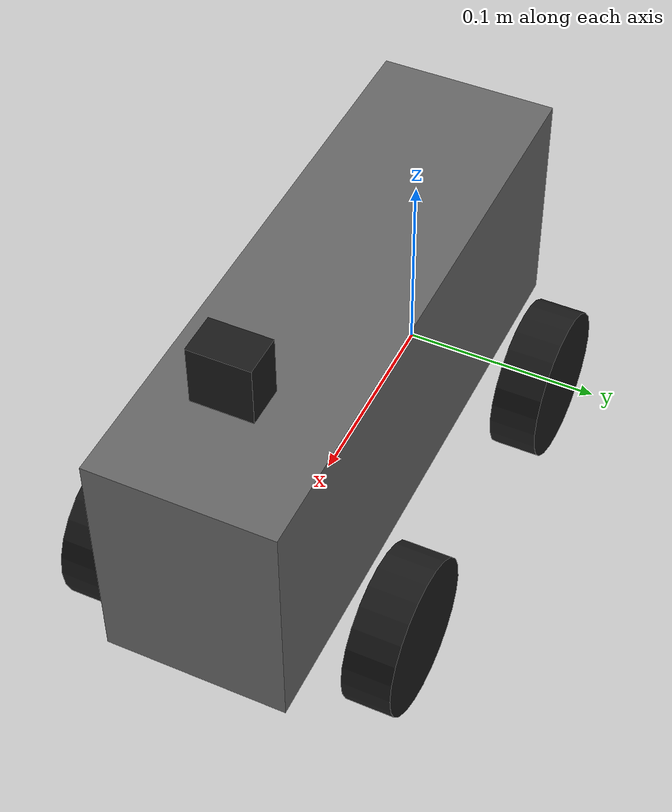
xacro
<?xml version="1.0"?>
<robot name="ackermann" xmlns:xacro="http://ros.org/wiki/xacro">
  <xacro:property name="PI" value="3.14159265"/>

  <xacro:property name="wheel_separation" value="0.174"/>
  <xacro:property name="wheel_base" value="0.174"/>
  <xacro:property name="wheel_diameter" value="0.077"/>
  <xacro:property name="wheel_thickness" value="0.024"/>
  <xacro:property name="base_elevation" value="0.01"/>

  <!-- VLA camera mount (provisional; locked at M3 hardware bring-up) -->
  <xacro:property name="vla_cam_x" value="${wheel_base/2 + 0.10}"/>
  <xacro:property name="vla_cam_z" value="0.15"/>
  <xacro:property name="vla_cam_pitch" value="0.0"/>
  <!-- OV9782 nominal: 1280x800, HFOV 100 deg -> fx = 640/tan(50 deg) = 537 -->
  <xacro:property name="vla_cam_hfov" value="${100.0*PI/180.0}"/>
  <xacro:property name="vla_cam_width" value="1280"/>
  <xacro:property name="vla_cam_height" value="800"/>
  <xacro:property name="vla_cam_rate" value="15"/>

  <xacro:arg name="ns" default="ackermann"/>

  <material name="gray">
    <color rgba="0.4 0.4 0.4 1.0"/>
  </material>
  <material name="black">
    <color rgba="0.1 0.1 0.1 1.0"/>
  </material>

  <link name="$(arg ns)/base_footprint"/>

  <joint name="$(arg ns)/base_joint" type="fixed">
    <parent link="$(arg ns)/base_link"/>
    <child link="$(arg ns)/base_footprint"/>
    <origin xyz="0 0 ${-base_elevation}" rpy="0 0 0"/>
  </joint>

  <link name="$(arg ns)/base_link">
    <visual>
      <origin xyz="${wheel_base/2} 0 .06" rpy="0 0 0"/>
      <geometry>
        <box size=".3 .09 .12"/>
      </geometry>
      <material name="gray"/>
    </visual>
    <collision>
      <origin xyz="${wheel_base/2} 0 .06" rpy="0 0 0"/>
      <geometry>
        <box size=".3 .09 .12"/>
      </geometry>
    </collision>
    <inertial>
      <origin xyz="${wheel_base/2} 0 ${wheel_diameter-base_elevation}" rpy="0 0 0"/>
      <mass value="3.0"/>
      <inertia ixx="0.0054" ixy="0.0" ixz="0.0"
               iyy="0.0252" iyz="0.0"
               izz="0.0252"/>
    </inertial>
  </link>

  <!-- Wheel macro: visual + collision + inertial identical across corners -->
  <xacro:macro name="wheel_link" params="name collision_y_offset">
    <link name="$(arg ns)/${name}_link">
      <inertial>
        <mass value="0.05"/>
        <inertia ixx="0.00003331" ixy="0.0" ixz="0.0"
                 iyy="0.0000204" iyz="0.0"
                 izz="0.0000204"/>
      </inertial>
      <visual>
        <origin xyz="0 ${collision_y_offset} 0" rpy="${-PI/2} 0 0"/>
        <geometry>
          <cylinder radius="${wheel_diameter/2}" length="${wheel_thickness}"/>
        </geometry>
        <material name="black"/>
      </visual>
      <collision>
        <origin xyz="0 ${collision_y_offset} 0" rpy="${-PI/2} 0 0"/>
        <geometry>
          <cylinder radius="${wheel_diameter/2}" length="0.03"/>
        </geometry>
        <surface>
          <friction>
            <ode>
              <mu value="0.5"/>
              <mu2 value="1.0"/>
              <fdir1 value="0 0 1"/>
            </ode>
          </friction>
        </surface>
      </collision>
    </link>
  </xacro:macro>

  <!-- Front wheels: steering knuckle (revolute) + spinning wheel (continuous) -->
  <xacro:macro name="front_corner" params="side y_sign collision_y_offset">
    <joint name="$(arg ns)/front_${side}_wheel_steering_joint" type="revolute">
      <origin xyz="${wheel_base} ${y_sign*wheel_separation/2} 0" rpy="0 0 0"/>
      <parent link="$(arg ns)/base_link"/>
      <child link="$(arg ns)/front_${side}_wheel_steering_link"/>
      <axis xyz="0 0 1"/>
      <limit lower="-0.6" upper="0.6" effort="25" velocity="1"/>
    </joint>
    <link name="$(arg ns)/front_${side}_wheel_steering_link">
      <inertial>
        <mass value="0.005"/>
        <inertia ixx="0.0000018" ixy="0.0" ixz="0.0"
                 iyy="0.0000018" iyz="0.0"
                 izz="0.0000018"/>
      </inertial>
    </link>
    <joint name="$(arg ns)/front_${side}_wheel_joint" type="continuous">
      <origin xyz="0 0 0" rpy="0 0 0"/>
      <parent link="$(arg ns)/front_${side}_wheel_steering_link"/>
      <child link="$(arg ns)/front_${side}_wheel_link"/>
      <axis xyz="0 1 0"/>
      <limit lower="-1e16" upper="1e16" effort="100" velocity="100"/>
      <dynamics damping="0.0" friction="0.0"/>
    </joint>
    <xacro:wheel_link name="front_${side}_wheel" collision_y_offset="${collision_y_offset}"/>
  </xacro:macro>

  <!-- Rear wheels: driven, fixed heading -->
  <xacro:macro name="rear_corner" params="side y_sign collision_y_offset">
    <joint name="$(arg ns)/rear_${side}_wheel_joint" type="continuous">
      <origin xyz="0 ${y_sign*wheel_separation/2} 0" rpy="0 0 0"/>
      <parent link="$(arg ns)/base_link"/>
      <child link="$(arg ns)/rear_${side}_wheel_link"/>
      <axis xyz="0 1 0"/>
      <limit lower="-1e16" upper="1e16" effort="100" velocity="100"/>
      <dynamics damping="0.0" friction="0.0"/>
    </joint>
    <xacro:wheel_link name="rear_${side}_wheel" collision_y_offset="${collision_y_offset}"/>
  </xacro:macro>

  <xacro:front_corner side="left"  y_sign="1"  collision_y_offset="-0.015"/>
  <xacro:front_corner side="right" y_sign="-1" collision_y_offset="0.015"/>
  <xacro:rear_corner  side="left"  y_sign="1"  collision_y_offset="-0.015"/>
  <xacro:rear_corner  side="right" y_sign="-1" collision_y_offset="0.015"/>

  <!-- VLA forward camera (OV9782-locked) -->
  <joint name="$(arg ns)/vla_camera_joint" type="fixed">
    <parent link="$(arg ns)/base_link"/>
    <child link="$(arg ns)/vla_camera_link"/>
    <origin xyz="${vla_cam_x} 0 ${vla_cam_z}" rpy="0 ${vla_cam_pitch} 0"/>
  </joint>
  <link name="$(arg ns)/vla_camera_link">
    <visual>
      <geometry>
        <box size="0.02 0.03 0.03"/>
      </geometry>
      <material name="black"/>
    </visual>
    <inertial>
      <mass value="0.01"/>
      <inertia ixx="0.000001" ixy="0.0" ixz="0.0"
               iyy="0.000001" iyz="0.0"
               izz="0.000001"/>
    </inertial>
  </link>
  <!-- ROS optical frame convention (z forward, x right, y down) -->
  <joint name="$(arg ns)/vla_camera_optical_joint" type="fixed">
    <parent link="$(arg ns)/vla_camera_link"/>
    <child link="$(arg ns)/vla_camera_optical"/>
    <origin xyz="0 0 0" rpy="${-PI/2} 0 ${-PI/2}"/>
  </joint>
  <link name="$(arg ns)/vla_camera_optical"/>

  <gazebo reference="$(arg ns)/vla_camera_link">
    <sensor name="vla_camera" type="camera">
      <update_rate>${vla_cam_rate}</update_rate>
      <topic>vla_camera/image</topic>
      <gz_frame_id>$(arg ns)/vla_camera_optical</gz_frame_id>
      <camera>
        <camera_info_topic>vla_camera/camera_info</camera_info_topic>
        <horizontal_fov>${vla_cam_hfov}</horizontal_fov>
        <image>
          <width>${vla_cam_width}</width>
          <height>${vla_cam_height}</height>
          <format>R8G8B8</format>
        </image>
        <clip>
          <near>0.02</near>
          <far>50.0</far>
        </clip>
      </camera>
      <always_on>1</always_on>
    </sensor>
  </gazebo>

  <ros2_control name="GazeboSimSystem" type="system">
    <hardware>
      <plugin>gz_ros2_control/GazeboSimSystem</plugin>
    </hardware>
    <joint name="$(arg ns)/rear_left_wheel_joint">
      <command_interface name="velocity"/>
      <state_interface name="velocity"/>
      <state_interface name="position"/>
    </joint>
    <joint name="$(arg ns)/rear_right_wheel_joint">
      <command_interface name="velocity"/>
      <state_interface name="velocity"/>
      <state_interface name="position"/>
    </joint>
    <joint name="$(arg ns)/front_left_wheel_joint">
      <state_interface name="velocity"/>
      <state_interface name="position"/>
    </joint>
    <joint name="$(arg ns)/front_right_wheel_joint">
      <state_interface name="velocity"/>
      <state_interface name="position"/>
    </joint>
    <joint name="$(arg ns)/front_left_wheel_steering_joint">
      <command_interface name="position"/>
      <state_interface name="position"/>
    </joint>
    <joint name="$(arg ns)/front_right_wheel_steering_joint">
      <command_interface name="position"/>
      <state_interface name="position"/>
    </joint>
  </ros2_control>

  <gazebo>
    <plugin filename="libgz_ros2_control-system.so"
            name="gz_ros2_control::GazeboSimROS2ControlPlugin">
      <parameters>$(find rover_sim)/config/controllers.yaml</parameters>
      <ros>
        <namespace></namespace>
        <remapping>ackermann_steering_controller/reference:=cmd_vel</remapping>
        <remapping>ackermann_steering_controller/reference_unstamped:=cmd_vel_unstamped</remapping>
      </ros>
    </plugin>

    <!-- Ground-truth world pose at 50 Hz: the label source for the recorder -->
    <plugin filename="gz-sim-odometry-publisher-system"
            name="gz::sim::systems::OdometryPublisher">
      <dimensions>3</dimensions>
      <odom_frame>odom</odom_frame>
      <robot_base_frame>$(arg ns)/base_link</robot_base_frame>
      <odom_topic>$(arg ns)/gt_odom</odom_topic>
      <odom_publish_frequency>50</odom_publish_frequency>
      <publish_tf>false</publish_tf>
    </plugin>
  </gazebo>

</robot>
